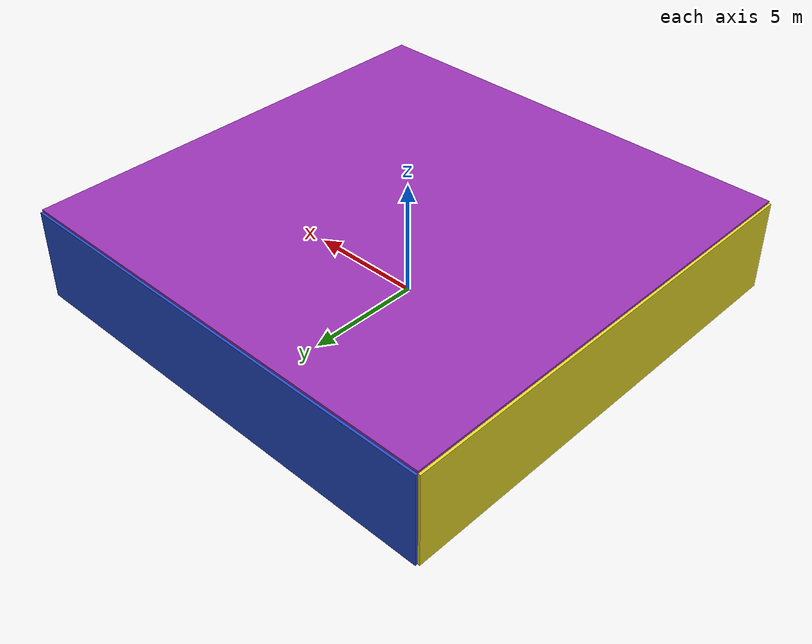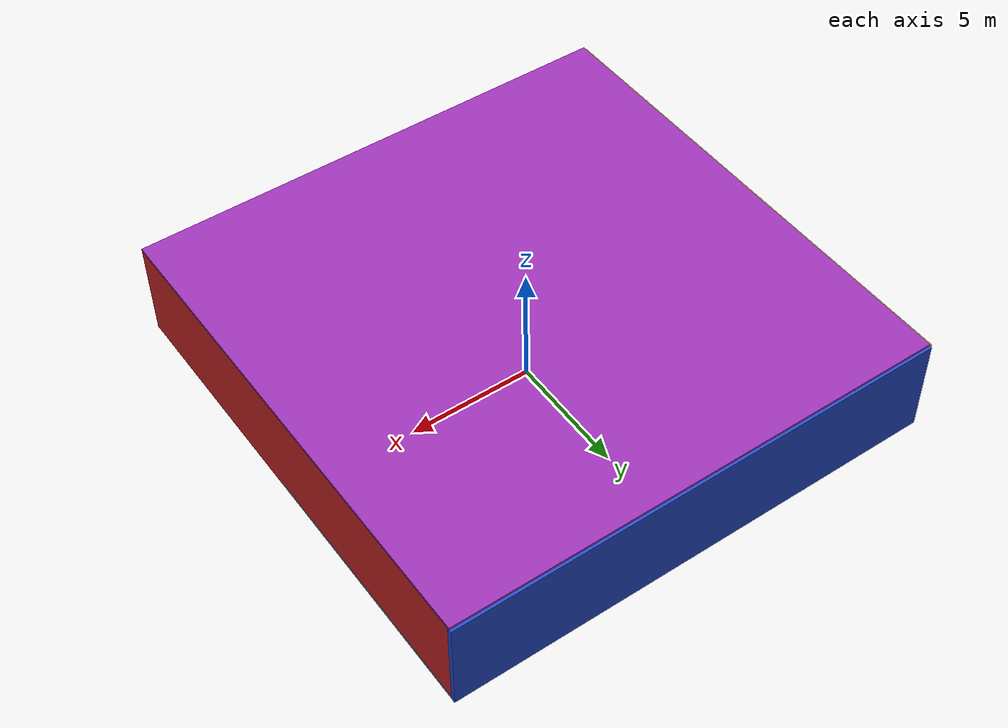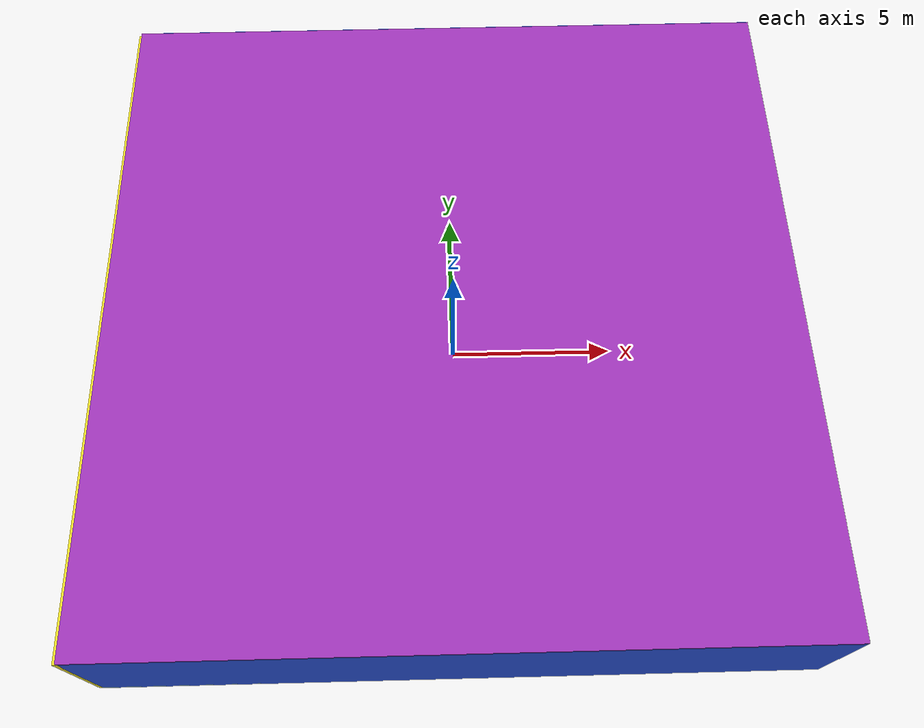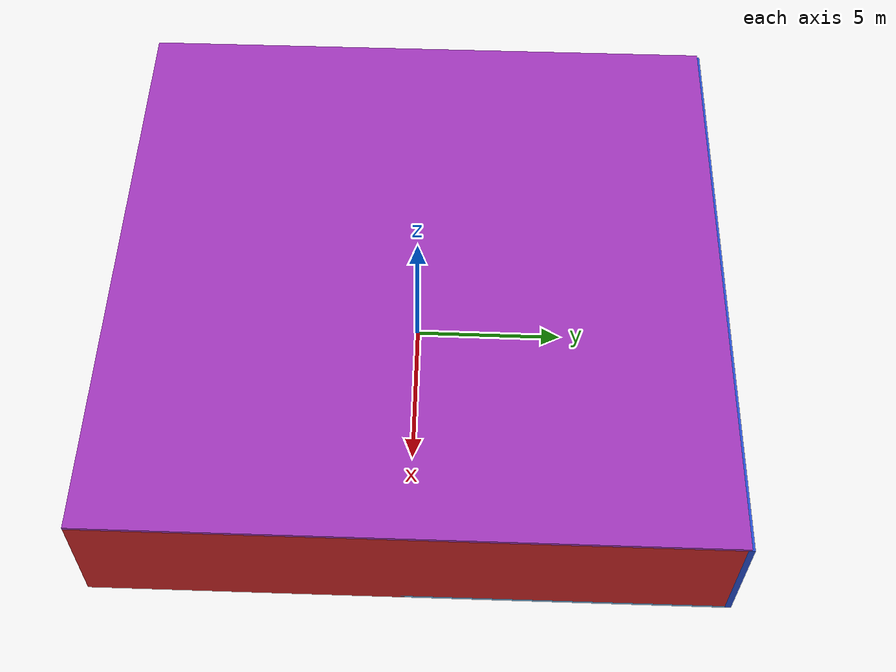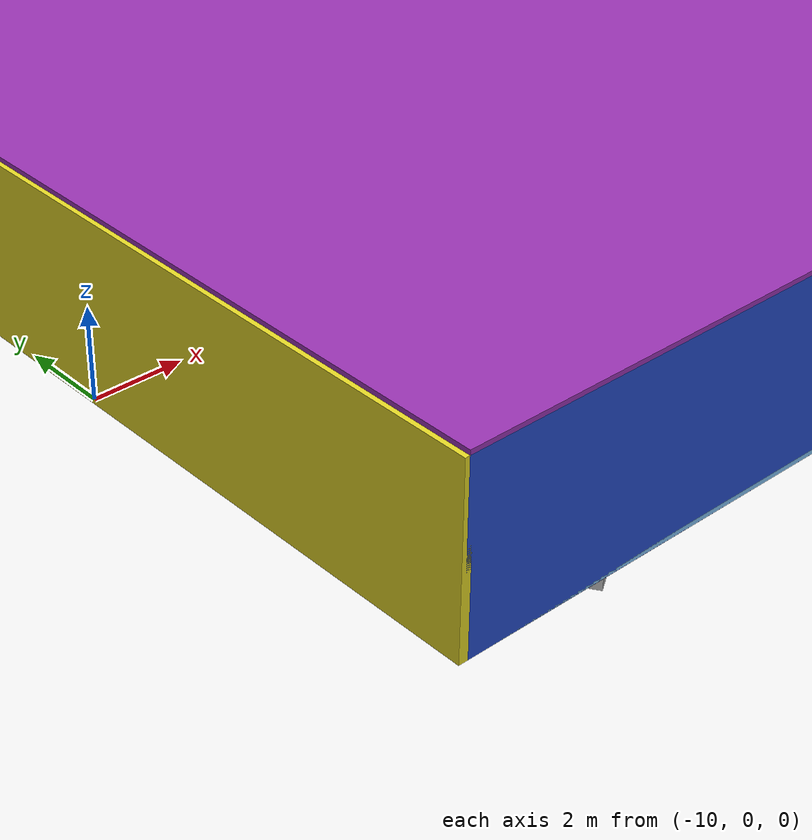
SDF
<sdf version="1.4">
 <world name="default">
  <physics type="ode">
   <max_step_size>0.001</max_step_size>
   <real_time_factor>1</real_time_factor>
   <real_time_update_rate>1000</real_time_update_rate>
   <gravity>0 0 -9.8</gravity>
  </physics>
  <scene><ambient>0.4 0.4 0.4 1</ambient><background>0.7 0.7 0.7 1</background><shadows>1</shadows></scene>
  <model name="Surrounding">
   <static>1</static>
   <link name="Ceiling">
    <collision name="Ceiling_Collision"><geometry><box><size>20 20 0.1</size></box></geometry></collision>
    <visual name="Ceiling_Visual">
     <geometry><box><size>20 20 0.1</size></box></geometry>
     <material>
      <script><uri>file://media/materials/scripts/gazebo.material</uri><name>Gazebo/Purple</name></script>
     </material>
    </visual>
    <pose>0 0 4.05 0 0 0</pose>
   </link>
   <link name="Wall_South">
    <collision name="Wall_South_Collision">
     <geometry><box><size>20 0 4</size></box></geometry>
     <pose>0 0 2 0 -0 0</pose>
    </collision>
    <visual name="Wall_South_Visual">
     <pose>0 0 2 0 -0 0</pose>
     <geometry><box><size>20 0 4</size></box></geometry>
     <material>
      <script><uri>file://media/materials/scripts/gazebo.material</uri><name>Gazebo/BlueLaser</name></script>
     </material>
    </visual>
    <velocity_decay><linear>0</linear><angular>0</angular></velocity_decay>
    <pose>0 -10 0 0 -0 0</pose>
   </link>
   <link name="Wall_East">
    <collision name="Wall_21_Collision">
     <geometry><box><size>20 0 4</size></box></geometry>
     <pose>0 0 2 0 -0 0</pose>
    </collision>
    <visual name="Wall_21_Visual">
     <pose>0 0 2 0 -0 0</pose>
     <geometry><box><size>20 0 4</size></box></geometry>
     <material>
      <script><uri>file://media/materials/scripts/gazebo.material</uri><name>Gazebo/RedGlow</name></script>
     </material>
    </visual>
    <velocity_decay><linear>0</linear><angular>0</angular></velocity_decay>
    <pose>10 0 0 0 -0 1.5708</pose>
   </link>
   <link name="Wall_North">
    <collision name="Wall_22_Collision">
     <geometry><box><size>20 0.2 4</size></box></geometry>
     <pose>0 0 2 0 -0 0</pose>
    </collision>
    <visual name="Wall_22_Visual">
     <pose>0 0 2 0 -0 0</pose>
     <geometry><box><size>20 0.2 4</size></box></geometry>
     <material>
      <script><uri>file://media/materials/scripts/gazebo.material</uri><name>Gazebo/BlueGlow</name></script>
     </material>
    </visual>
    <velocity_decay><linear>0</linear><angular>0</angular></velocity_decay>
    <pose>0 10 0 0 -0 0</pose>
   </link>
   <link name="Wall_West">
    <collision name="Wall_23_Collision">
     <geometry><box><size>20 0.2 4</size></box></geometry>
     <pose>0 0 2 0 -0 0</pose>
    </collision>
    <visual name="Wall_23_Visual">
     <pose>0 0 2 0 -0 0</pose>
     <geometry><box><size>20 0.2 4</size></box></geometry>
     <material>
      <script><uri>file://media/materials/scripts/gazebo.material</uri><name>Gazebo/Yellow</name></script>
     </material>
    </visual>
    <velocity_decay><linear>0</linear><angular>0</angular></velocity_decay>
    <pose>-10 0 0 0 0 -1.5708</pose>
   </link>
   <link name="Ground_link">
    <collision name="collision">
     <pose>0 0 .05 0 -0 0</pose>
     <geometry><box><size>20 20 0.1</size></box></geometry>
    </collision>
    <visual name="visual">
     <pose>0 0 .05 0 -0 0</pose>
     <geometry><box><size>20 20 0.1</size></box></geometry>
     <material>
      <script><uri>file://media/materials/scripts/gazebo.material</uri><name>Gazebo/SkyBlue</name></script>
     </material>
    </visual>
   </link>
   <static>1</static>
  </model>
  <spherical_coordinates>
   <surface_model>EARTH_WGS84</surface_model>
   <latitude_deg>0</latitude_deg>
   <longitude_deg>0</longitude_deg>
   <elevation>0</elevation>
   <heading_deg>0</heading_deg>
  </spherical_coordinates>
  <light name="lightball_0" type="diffuse">
   <diffuse>0.8 0.8 0.8 1</diffuse>
   <specular>0.2 0.2 0.2 1</specular>
   <attenuation>
    <range>100</range>
    <constant>0.7</constant>
    <linear>0.01</linear>
    <quadratic>0.001</quadratic>
   </attenuation>
   <direction>-0.5 0.1 -0.9</direction>
   <pose>-3.98144077256 -3.63302151481 2.81629972917 0 0 0</pose>
  </light>
  <light name="lightball_1" type="diffuse">
   <diffuse>0.8 0.8 0.8 1</diffuse>
   <specular>0.2 0.2 0.2 1</specular>
   <attenuation>
    <range>100</range>
    <constant>0.7</constant>
    <linear>0.01</linear>
    <quadratic>0.001</quadratic>
   </attenuation>
   <direction>-0.5 0.1 -0.9</direction>
   <pose>-1.20370637007 5.4780142979 2.26712542642 0 0 0</pose>
  </light>
  <light name="lightball_2" type="diffuse">
   <diffuse>0.8 0.8 0.8 1</diffuse>
   <specular>0.2 0.2 0.2 1</specular>
   <attenuation>
    <range>100</range>
    <constant>0.7</constant>
    <linear>0.01</linear>
    <quadratic>0.001</quadratic>
   </attenuation>
   <direction>-0.5 0.1 -0.9</direction>
   <pose>2.08167711165 -3.66124258105 2.59569000041 0 0 0</pose>
  </light>
  <light name="lightball_3" type="diffuse">
   <diffuse>0.8 0.8 0.8 1</diffuse>
   <specular>0.2 0.2 0.2 1</specular>
   <attenuation>
    <range>100</range>
    <constant>0.7</constant>
    <linear>0.01</linear>
    <quadratic>0.001</quadratic>
   </attenuation>
   <direction>-0.5 0.1 -0.9</direction>
   <pose>-3.32685681388 -1.56888567386 1.9651888638 0 0 0</pose>
  </light>
  <light name="lightball_4" type="diffuse">
   <diffuse>0.8 0.8 0.8 1</diffuse>
   <specular>0.2 0.2 0.2 1</specular>
   <attenuation>
    <range>100</range>
    <constant>0.7</constant>
    <linear>0.01</linear>
    <quadratic>0.001</quadratic>
   </attenuation>
   <direction>-0.5 0.1 -0.9</direction>
   <pose>9.90072745062 3.66418824052 1.70717546173 0 0 0</pose>
  </light>
  <light name="lightball_5" type="diffuse">
   <diffuse>0.8 0.8 0.8 1</diffuse>
   <specular>0.2 0.2 0.2 1</specular>
   <attenuation>
    <range>100</range>
    <constant>0.7</constant>
    <linear>0.01</linear>
    <quadratic>0.001</quadratic>
   </attenuation>
   <direction>-0.5 0.1 -0.9</direction>
   <pose>-4.83674057708 -3.25879532515 1.56465506069 0 0 0</pose>
  </light>
  <light name="lightball_6" type="diffuse">
   <diffuse>0.8 0.8 0.8 1</diffuse>
   <specular>0.2 0.2 0.2 1</specular>
   <attenuation>
    <range>100</range>
    <constant>0.7</constant>
    <linear>0.01</linear>
    <quadratic>0.001</quadratic>
   </attenuation>
   <direction>-0.5 0.1 -0.9</direction>
   <pose>4.2978801094 -5.34121207709 0.863881885359 0 0 0</pose>
  </light>
  <light name="lightball_7" type="diffuse">
   <diffuse>0.8 0.8 0.8 1</diffuse>
   <specular>0.2 0.2 0.2 1</specular>
   <attenuation>
    <range>100</range>
    <constant>0.7</constant>
    <linear>0.01</linear>
    <quadratic>0.001</quadratic>
   </attenuation>
   <direction>-0.5 0.1 -0.9</direction>
   <pose>-0.728407647853 4.5971253931 2.27677302543 0 0 0</pose>
  </light>
  <light name="lightball_8" type="diffuse">
   <diffuse>0.8 0.8 0.8 1</diffuse>
   <specular>0.2 0.2 0.2 1</specular>
   <attenuation>
    <range>100</range>
    <constant>0.7</constant>
    <linear>0.01</linear>
    <quadratic>0.001</quadratic>
   </attenuation>
   <direction>-0.5 0.1 -0.9</direction>
   <pose>-9.01219322429 4.12933125976 1.69453320826 0 0 0</pose>
  </light>
  <include>
   <uri>model://textured_shapes</uri>
   <pose>-7.21633629913 -7.84665666415 0 0 0 0.574639815543</pose>
  </include>
  <include>
   <uri>model://robocup_3Dsim_goal</uri>
   <pose>-8.47429644755 -4.66327113546 0 0 0 2.50366274564</pose>
  </include>
  <include><uri>model://table</uri><pose>-0.576615544912 -8.47385969314 0 0 0 2.23074834869</pose></include>
  <include>
   <uri>model://robocup_3Dsim_goal</uri>
   <pose>-1.55172139887 4.46220011811 0 0 0 1.27991418775</pose>
  </include>
  <include>
   <uri>model://construction_cone</uri>
   <pose>0.665805955851 1.72945041286 0 0 0 0.602123037989</pose>
  </include>
 </world>
</sdf>

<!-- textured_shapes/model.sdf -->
<sdf version="1.6">
  <model name="textured_shapes">
    <pose>0 0 0.5 0 0 0</pose>
    <link name="box">
      <pose>0 -1.5 0 0 0 0</pose>
      <collision name="collision">
        <geometry>
          <box>
            <size>1 1 1</size>
          </box>
        </geometry>
      </collision>
      <visual name="visual">
        <geometry>
          <box>
            <size>1 1 1</size>
          </box>
        </geometry>
        <material>
          <script>
            <uri>model://../model_source/models/textured_shapes/materials/scripts</uri>
            <uri>model://../model_source/models/textured_shapes/materials/textures</uri>
            <name>TexturedShape/Squares</name>
          </script>
        </material>
      </visual>
    </link>
    <link name="sphere">
      <collision name="collision">
        <geometry>
          <sphere>
            <radius>0.5</radius>
          </sphere>
        </geometry>
      </collision>
      <visual name="visual">
        <geometry>
          <sphere>
            <radius>0.5</radius>
          </sphere>
        </geometry>
        <material>
          <script>
            <uri>model://../model_source/models/textured_shapes/materials/scripts</uri>
            <uri>model://../model_source/models/textured_shapes/materials/textures</uri>
            <name>TexturedShape/Squares</name>
          </script>
        </material>
      </visual>
    </link>
    <link name="cylinder">
      <pose>0 1.5 0 0 0 0</pose>
      <collision name="collision">
        <geometry>
          <cylinder>
            <radius>0.5</radius>
            <length>1</length>
          </cylinder>
        </geometry>
      </collision>
      <visual name="visual">
        <geometry>
          <cylinder>
            <radius>0.5</radius>
            <length>1</length>
          </cylinder>
        </geometry>
        <material>
          <script>
            <uri>model://../model_source/models/textured_shapes/materials/scripts</uri>
            <uri>model://../model_source/models/textured_shapes/materials/textures</uri>
            <name>TexturedShape/Squares</name>
          </script>
        </material>
      </visual>
    </link>
  </model>
</sdf>

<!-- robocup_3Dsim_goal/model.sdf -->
<sdf version="1.5">
  <model name="robocup_3d_goal">
    <static>true</static>
    <link name="left_post">
      <pose>0 1.05 0.45 0 0 0</pose>
      <collision name="collision">
        <geometry>
          <cylinder>
            <radius>0.05</radius>
            <length>0.9</length>
          </cylinder>
        </geometry>
      </collision>
      <visual name="visual">
        <geometry>
          <cylinder>
            <radius>0.05</radius>
            <length>0.9</length>
          </cylinder>
        </geometry>
        <material>
          <script>
            <uri>file://media/materials/scripts/gazebo.material</uri>
            <name>Gazebo/ZincYellow</name>
          </script>
        </material>
      </visual>
    </link>
    <link name="left_support_horiz_lower">
      <pose>0.30 1.05 0.01 0 0 0</pose>
      <collision name="collision">
        <geometry>
          <box>
            <size>0.50 0.02 0.02</size>
          </box>
        </geometry>
      </collision>
      <visual name="visual">
        <geometry>
          <box>
            <size>0.50 0.02 0.02</size>
          </box>
        </geometry>
        <material>
          <script>
            <uri>file://media/materials/scripts/gazebo.material</uri>
            <name>Gazebo/White</name>
          </script>
        </material>
      </visual>
    </link>
    <link name="left_support_horiz_upper">
      <pose>0.30 1.05 0.79 0 0 0</pose>
      <collision name="collision">
        <geometry>
          <box>
            <size>0.50 0.02 0.02</size>
          </box>
        </geometry>
      </collision>
      <visual name="visual">
        <geometry>
          <box>
            <size>0.50 0.02 0.02</size>
          </box>
        </geometry>
        <material>
          <script>
            <uri>file://media/materials/scripts/gazebo.material</uri>
            <name>Gazebo/White</name>
          </script>
        </material>
      </visual>
    </link>
    <link name="left_support_vertical">
      <pose>0.56 1.05 0.4 0 1.5708 0</pose>
      <collision name="collision">
        <geometry>
          <box>
            <size>0.80 0.02 0.02</size>
          </box>
        </geometry>
      </collision>
      <visual name="visual">
        <geometry>
          <box>
            <size>0.80 0.02 0.02</size>
          </box>
        </geometry>
        <material>
          <script>
            <uri>file://media/materials/scripts/gazebo.material</uri>
            <name>Gazebo/White</name>
          </script>
        </material>
      </visual>
    </link>
    <link name="right_support_horiz_lower">
      <pose>0.30 -1.05 0.01 0 0 0</pose>
      <collision name="collision">
        <geometry>
          <box>
            <size>0.50 0.02 0.02</size>
          </box>
        </geometry>
      </collision>
      <visual name="visual">
        <geometry>
          <box>
            <size>0.50 0.02 0.02</size>
          </box>
        </geometry>
        <material>
          <script>
            <uri>file://media/materials/scripts/gazebo.material</uri>
            <name>Gazebo/White</name>
          </script>
        </material>
      </visual>
    </link>
    <link name="right_support_horiz_upper">
      <pose>0.30 -1.05 0.79 0 0 0</pose>
      <collision name="collision">
        <geometry>
          <box>
            <size>0.50 0.02 0.02</size>
          </box>
        </geometry>
      </collision>
      <visual name="visual">
        <geometry>
          <box>
            <size>0.50 0.02 0.02</size>
          </box>
        </geometry>
        <material>
          <script>
            <uri>file://media/materials/scripts/gazebo.material</uri>
            <name>Gazebo/White</name>
          </script>
        </material>
      </visual>
    </link>
    <link name="right_support_vertical">
      <pose>0.56 -1.05 0.4 0 1.5708 0</pose>
      <collision name="collision">
        <geometry>
          <box>
            <size>0.80 0.02 0.02</size>
          </box>
        </geometry>
      </collision>
      <visual name="visual">
        <geometry>
          <box>
            <size>0.80 0.02 0.02</size>
          </box>
        </geometry>
        <material>
          <script>
            <uri>file://media/materials/scripts/gazebo.material</uri>
            <name>Gazebo/White</name>
          </script>
        </material>
      </visual>
    </link>
    <link name="center_support_horiz_lower">
      <pose>0.56 0 0.01 0 1.5708 0</pose>
      <collision name="collision">
        <geometry>
          <box>
            <size>0.02 2.08 0.02</size>
          </box>
        </geometry>
      </collision>
      <visual name="visual">
        <geometry>
          <box>
            <size>0.02 2.08 0.02</size>
          </box>
        </geometry>
        <material>
          <script>
            <uri>file://media/materials/scripts/gazebo.material</uri>
            <name>Gazebo/White</name>
          </script>
        </material>
      </visual>
    </link>
    <link name="center_support_horiz_upper">
      <pose>0.56 0 0.79 0 1.5708 0</pose>
      <collision name="collision">
        <geometry>
          <box>
            <size>0.02 2.08 0.02</size>
          </box>
        </geometry>
      </collision>
      <visual name="visual">
        <geometry>
          <box>
            <size>0.02 2.08 0.02</size>
          </box>
        </geometry>
        <material>
          <script>
            <uri>file://media/materials/scripts/gazebo.material</uri>
            <name>Gazebo/White</name>
          </script>
        </material>
      </visual>
    </link>
    <link name="right_post">
      <pose>0 -1.05 0.45 0 0 0</pose>
      <collision name="collision">
        <geometry>
          <cylinder>
            <radius>0.05</radius>
            <length>0.9</length>
          </cylinder>
        </geometry>
      </collision>
      <visual name="visual">
        <geometry>
          <cylinder>
            <radius>0.05</radius>
            <length>0.9</length>
          </cylinder>
        </geometry>
        <material>
          <script>
            <uri>file://media/materials/scripts/gazebo.material</uri>
            <name>Gazebo/ZincYellow</name>
          </script>
        </material>
      </visual>
    </link>
    <link name="crossbar">
      <pose>0 0 0.85 1.57 1.57 0</pose>
      <collision name="collision">
        <geometry>
          <cylinder>
            <radius>0.05</radius>
            <length>2.0</length>
          </cylinder>
        </geometry>
      </collision>
      <visual name="visual">
        <geometry>
          <cylinder>
            <radius>0.05</radius>
            <length>2.0</length>
          </cylinder>
        </geometry>
        <material>
          <script>
            <uri>file://media/materials/scripts/gazebo.material</uri>
            <name>Gazebo/ZincYellow</name>
          </script>
        </material>
      </visual>
    </link>
    <link name="center_net">
      <pose>0.56 0 0.40 0 0 0</pose>
      <collision name="collision">
        <geometry>
          <box>
            <size>0.01 2.1 0.80</size>
          </box>
        </geometry>
      </collision>
      <visual name="visual">
        <geometry>
          <box>
            <size>0.01 2.1 0.80</size>
          </box>
        </geometry>
        <material>
          <script>
            <uri>model://../model_source/models/robocup09_spl_field/materials/scripts/</uri>
            <uri>model://../model_source/models/robocup09_spl_field/materials/textures/</uri>
            <name>RoboCup/Net</name>
          </script>
        </material>
      </visual>
    </link>
    <link name="left_net">
      <pose>0.30 1.05 0.40 0 0 0</pose>
      <collision name="collision">
        <geometry>
          <box>
            <size>0.50 0.01 0.76</size>
          </box>
        </geometry>
      </collision>
      <visual name="visual">
        <geometry>
          <box>
            <size>0.50 0.01 0.76</size>
          </box>
        </geometry>
        <material>
          <script>
            <uri>model://../model_source/models/robocup09_spl_field/materials/scripts/</uri>
            <uri>model://../model_source/models/robocup09_spl_field/materials/textures/</uri>
            <name>RoboCup/Net</name>
          </script>
        </material>
      </visual>
    </link>
    <link name="right_net">
      <pose>0.30 -1.05 0.40 0 0 0</pose>
      <collision name="collision">
        <geometry>
          <box>
            <size>0.50 0.01 0.76</size>
          </box>
        </geometry>
      </collision>
      <visual name="visual">
        <geometry>
          <box>
            <size>0.50 0.01 0.76</size>
          </box>
        </geometry>
        <material>
          <script>
            <uri>model://../model_source/models/robocup09_spl_field/materials/scripts/</uri>
            <uri>model://../model_source/models/robocup09_spl_field/materials/textures/</uri>
            <name>RoboCup/Net</name>
          </script>
        </material>
      </visual>
    </link>
  </model>
</sdf>

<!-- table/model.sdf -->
<sdf version="1.5">
  <model name="table">
    <static>true</static>
    <link name="link">
      <collision name="surface">
        <pose>0 0 1.0 0 0 0</pose>
        <geometry>
          <box>
            <size>1.5 0.8 0.03</size>
          </box>
        </geometry>
        <surface>
          <friction>
            <ode>
              <mu>0.6</mu>
              <mu2>0.6</mu2>
            </ode>
          </friction>
        </surface>
      </collision>
      <visual name="visual1">
        <pose>0 0 1.0 0 0 0</pose>
        <geometry>
          <box>
            <size>1.5 0.8 0.03</size>
          </box>
        </geometry>
        <material>
          <script>
            <uri>model://media/materials/scripts/gazebo.material</uri>
            <name>Gazebo/Wood</name>
          </script>
        </material>
      </visual>
      <collision name="front_left_leg">
        <pose>0.68 0.38 0.5 0 0 0</pose>
        <geometry>
          <cylinder>
            <radius>0.02</radius>
            <length>1.0</length>
          </cylinder>
        </geometry>
      </collision>
      <visual name="front_left_leg">
        <pose>0.68 0.38 0.5 0 0 0</pose>
        <geometry>
          <cylinder>
            <radius>0.02</radius>
            <length>1.0</length>
          </cylinder>
        </geometry>
        <material>
          <script>
            <uri>model://media/materials/scripts/gazebo.material</uri>
            <name>Gazebo/Grey</name>
          </script>
        </material>
      </visual>
      <collision name="front_right_leg">
        <pose>0.68 -0.38 0.5 0 0 0</pose>
        <geometry>
          <cylinder>
            <radius>0.02</radius>
            <length>1.0</length>
          </cylinder>
        </geometry>
      </collision>
      <visual name="front_right_leg">
        <pose>0.68 -0.38 0.5 0 0 0</pose>
        <geometry>
          <cylinder>
            <radius>0.02</radius>
            <length>1.0</length>
          </cylinder>
        </geometry>
        <material>
          <script>
            <uri>model://media/materials/scripts/gazebo.material</uri>
            <name>Gazebo/Grey</name>
          </script>
        </material>
      </visual>
      <collision name="back_right_leg">
        <pose>-0.68 -0.38 0.5 0 0 0</pose>
        <geometry>
          <cylinder>
            <radius>0.02</radius>
            <length>1.0</length>
          </cylinder>
        </geometry>
      </collision>
      <visual name="back_right_leg">
        <pose>-0.68 -0.38 0.5 0 0 0</pose>
        <geometry>
          <cylinder>
            <radius>0.02</radius>
            <length>1.0</length>
          </cylinder>
        </geometry>
        <material>
          <script>
            <uri>model://media/materials/scripts/gazebo.material</uri>
            <name>Gazebo/Grey</name>
          </script>
        </material>
      </visual>
      <collision name="back_left_leg">
        <pose>-0.68 0.38 0.5 0 0 0</pose>
        <geometry>
          <cylinder>
            <radius>0.02</radius>
            <length>1.0</length>
          </cylinder>
        </geometry>
      </collision>
      <visual name="back_left_leg">
        <pose>-0.68 0.38 0.5 0 0 0</pose>
        <geometry>
          <cylinder>
            <radius>0.02</radius>
            <length>1.0</length>
          </cylinder>
        </geometry>
        <material>
          <script>
            <uri>model://media/materials/scripts/gazebo.material</uri>
            <name>Gazebo/Grey</name>
          </script>
        </material>
      </visual>
    </link>
  </model>
</sdf>

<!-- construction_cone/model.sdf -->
<sdf version="1.5">
  <model name="Construction Cone">
    <link name="link">
      <collision name="collision">
        <geometry>
          <mesh>
            <scale>10 10 10</scale>
            <uri>file://isr-testbed/construction_cone/meshes/construction_cone.dae</uri>
          </mesh>
        </geometry>
      </collision>
      <visual name="visual">
        <geometry>
          <mesh>
            <scale>10 10 10</scale>
            <uri>file://isr-testbed/construction_cone/meshes/construction_cone.dae</uri>
          </mesh>
        </geometry>
      </visual>
    </link>
  </model>
</sdf>
